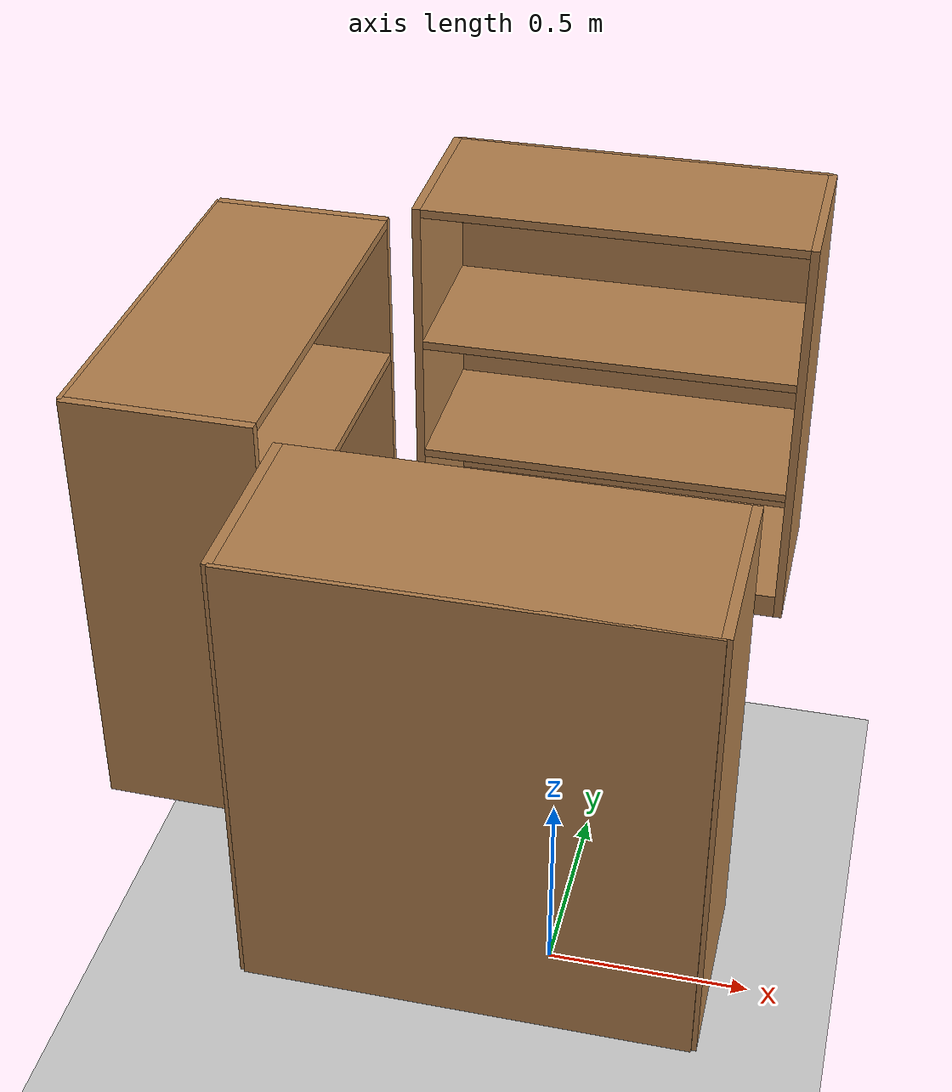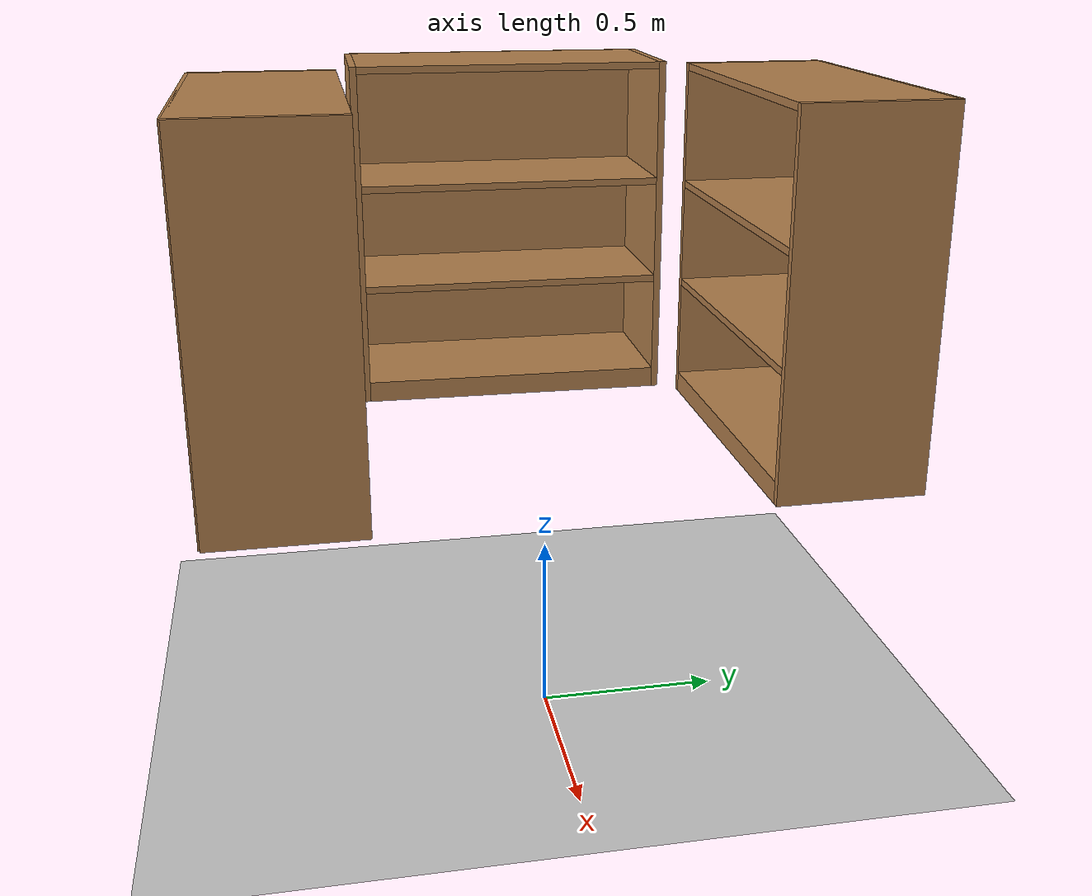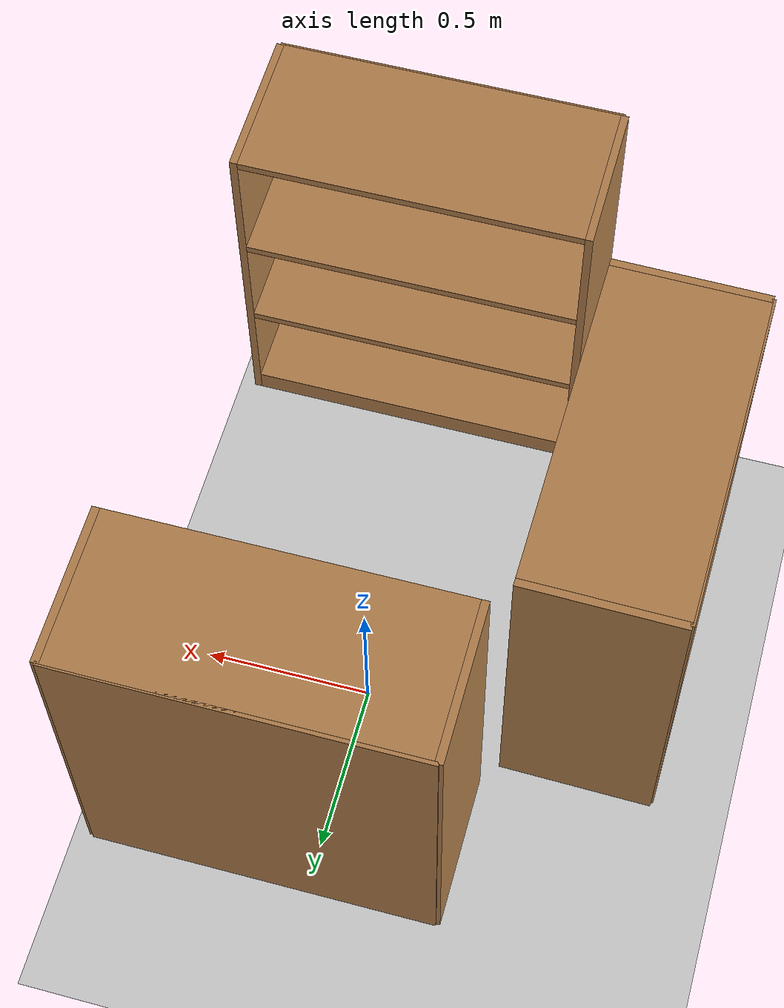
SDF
<sdf version="1.6">
 <world name="ur5_cubes">
  <gravity>0 0 -9.81</gravity>
  <physics name="default_physics" default="0" type="ode">
   <max_step_size>0.001</max_step_size>
   <real_time_factor>1</real_time_factor>
   <real_time_update_rate>1000</real_time_update_rate>
  </physics>
  <scene><ambient>0.4 0.4 0.4 1</ambient><background>0.7 0.7 0.7 1</background><shadows>1</shadows></scene>
  <include><uri>model://sun</uri></include>
  <include><uri>model://ground_plane</uri></include>
  <model name="bookshelf1">
   <static>true</static>
   <include><uri>model://Bookshelf</uri><pose>0 -0.9 0.78 0 0 3.14</pose></include>
  </model>
  <model name="bookshelf2">
   <static>true</static>
   <include><uri>model://Bookshelf</uri><pose>-0.9 0 0.78 0 0 1.556</pose></include>
  </model>
  <model name="bookshelf3">
   <static>true</static>
   <include><uri>model://Bookshelf</uri><pose>0 0.9 0.78 0 0 0</pose></include>
  </model>
 </world>
</sdf>

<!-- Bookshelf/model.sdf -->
<sdf version="1.5">
  <model name="bookshelf">
    <static>true</static>
    <link name="link">
      <inertial>
        <mass>1.0</mass>
      </inertial>

      <!-- Back panel -->
      <collision name="back">
        <pose>0 0.005 0.5 0 0 0</pose>
        <geometry><box><size>0.9 0.01 1.0</size></box></geometry>
      </collision>
      <visual name="visual1">
        <pose>0 0.005 0.5 0 0 0</pose>
        <geometry><box><size>0.9 0.01 1.0</size></box></geometry>
        <material><script><uri>file://media/materials/scripts/gazebo.material</uri><name>Gazebo/Wood</name></script></material>
      </visual>

      <!-- Side panels -->
      <collision name="left_side">
        <pose>0.45 -0.195 0.5 0 0 0</pose>
        <geometry><box><size>0.02 0.4 1.0</size></box></geometry>
      </collision>
      <visual name="visual2">
        <pose>0.45 -0.195 0.5 0 0 0</pose>
        <geometry><box><size>0.02 0.4 1.0</size></box></geometry>
        <material><script><uri>file://media/materials/scripts/gazebo.material</uri><name>Gazebo/Wood</name></script></material>
      </visual>
      <collision name="right_side">
        <pose>-0.45 -0.195 0.5 0 0 0</pose>
        <geometry><box><size>0.02 0.4 1.0</size></box></geometry>
      </collision>
      <visual name="visual3">
        <pose>-0.45 -0.195 0.5 0 0 0</pose>
        <geometry><box><size>0.02 0.4 1.0</size></box></geometry>
        <material><script><uri>file://media/materials/scripts/gazebo.material</uri><name>Gazebo/Wood</name></script></material>
      </visual>

      <!-- Bottom -->
      <collision name="bottom">
        <pose>0 -0.195 0.03 0 0 0</pose>
        <geometry><box><size>0.88 0.4 0.06</size></box></geometry>
      </collision>
      <visual name="visual4">
        <pose>0 -0.195 0.03 0 0 0</pose>
        <geometry><box><size>0.88 0.4 0.06</size></box></geometry>
        <material><script><uri>file://media/materials/scripts/gazebo.material</uri><name>Gazebo/Wood</name></script></material>
      </visual>

      <!-- Top -->
      <collision name="top">
        <pose>0 -0.195 0.99 0 0 0</pose>
        <geometry><box><size>0.88 0.4 0.02</size></box></geometry>
      </collision>
      <visual name="visual5">
        <pose>0 -0.195 0.99 0 0 0</pose>
        <geometry><box><size>0.88 0.4 0.02</size></box></geometry>
        <material><script><uri>file://media/materials/scripts/gazebo.material</uri><name>Gazebo/Wood</name></script></material>
      </visual>

      <!-- Lower shelf -->
      <collision name="low_shelf">
        <pose>0 -0.195 0.35 0 0 0</pose>
        <geometry><box><size>0.88 0.4 0.02</size></box></geometry>
      </collision>
      <visual name="visual6">
        <pose>0 -0.195 0.35 0 0 0</pose>
        <geometry><box><size>0.88 0.4 0.02</size></box></geometry>
        <material><script><uri>file://media/materials/scripts/gazebo.material</uri><name>Gazebo/Wood</name></script></material>
      </visual>

      <!-- Upper shelf -->
      <collision name="high_shelf">
        <pose>0 -0.195 0.65 0 0 0</pose>
        <geometry><box><size>0.88 0.4 0.02</size></box></geometry>
      </collision>
      <visual name="visual7">
        <pose>0 -0.195 0.65 0 0 0</pose>
        <geometry><box><size>0.88 0.4 0.02</size></box></geometry>
        <material><script><uri>file://media/materials/scripts/gazebo.material</uri><name>Gazebo/Wood</name></script></material>
      </visual>

    </link>
  </model>
</sdf>
